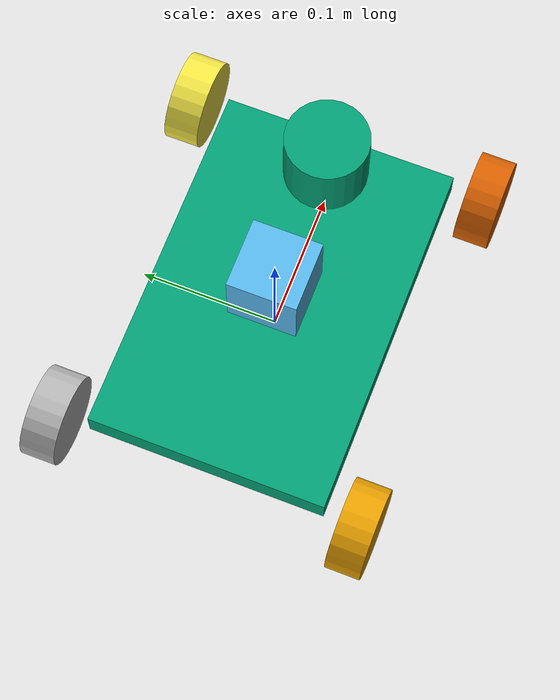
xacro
<?xml version="1.0"?>

<robot xmlns:xacro="http://www.ros.org/wiki/xacro" name="smartcar">

  <!-- ==================== Properties ==================== -->
  <!-- Dimensions -->
  <xacro:property name="wheel_diameter" value="0.064" />
  <xacro:property name="wheel_width" value="0.025" />
  <xacro:property name="wheelbase_length" value="0.257" />
  <xacro:property name="wheelbase_width" value="0.17" />
  <xacro:property name="Lidar_radius" value="0.03" />

  <!-- Masses and inertial properties -->
  <xacro:property name="wheel_mass" value="0.5" />
  <xacro:property name="chassis_mass" value="3.0" />
  <xacro:property name="chassis_height" value="${wheel_diameter/4}" />
  <xacro:property name="steer_link_mass" value="0.1" />
  <xacro:property name="steer_link_size" value="0.01" />
  <xacro:property name="imu_mass" value="0.05" />
  <xacro:property name="imu_size" value="0.05" />
  <xacro:property name="lidar_mass" value="0.05" />
  <xacro:property name="lidar_height" value="0.05" />

  <!-- ==================== Wheel Macros ==================== -->
  <!-- Front wheel with steering -->
  <xacro:macro name="front_wheel" params="prefix parent x y z">
    <link name="front_${prefix}_wheel_link">
      <inertial>
        <mass value="${wheel_mass}"/>
        <inertia
          ixx="${(wheel_mass/12) * (3*(wheel_diameter/2)*(wheel_diameter/2) + wheel_width*wheel_width)}"
          ixy="0.0"
          ixz="0.0"
          iyy="${(wheel_mass/12) * (3*(wheel_diameter/2)*(wheel_diameter/2) + wheel_width*wheel_width)}"
          iyz="0.0"
          izz="${(wheel_mass/2) * (wheel_diameter/2)*(wheel_diameter/2)}"/>
        <origin xyz="0 0 0" rpy="${pi/2} 0 0"/>
      </inertial>
      <visual>
        <origin xyz="0 0 0" rpy="${pi/2} 0 0"/>
        <geometry>
          <cylinder radius="${wheel_diameter/2}" length="${wheel_width}"/>
        </geometry>
      </visual>
      <collision>
        <origin xyz="0 0 0" rpy="${pi/2} 0 0"/>
        <geometry>
          <cylinder radius="${wheel_diameter/2}" length="${wheel_width}"/>
        </geometry>
      </collision>
    </link>

    <link name="front_${prefix}_wheel_steer_link">
      <visual>
          <geometry>
              <box size="0.01 0.01 0.01"/>
          </geometry>
          <origin xyz="0 0 0" rpy="0 0 0"/>
      </visual>

      <collision>
          <geometry>
              <box size="0.01 0.01 0.01"/>
          </geometry>
          <origin xyz="0 0 0" rpy="0 0 0"/>
      </collision>

      <inertial>
          <mass value="${steer_link_mass}"/>
          <origin xyz="0 0 0" rpy="0 0 0"/>
          <inertia
            ixx="${(steer_link_mass/6) * (steer_link_size*steer_link_size)}"
            ixy="0.0"
            ixz="0.0"
            iyy="${(steer_link_mass/6) * (steer_link_size*steer_link_size)}"
            iyz="0.0"
            izz="${(steer_link_mass/6) * (steer_link_size*steer_link_size)}"/>
      </inertial>
  </link>

    <joint name="front_${prefix}_wheel_steer_joint" type="revolute">
      <origin xyz="${x} ${y} ${z}" rpy="0 0 0"/>
      <parent link="${parent}"/>
      <child link="front_${prefix}_wheel_steer_link"/>
      <axis xyz="0 0 1"/>
      <limit lower="-${45 * (pi / 180)}" upper="${45 * (pi / 180)}" effort="10" velocity="1"/>
  </joint>

  <joint name="front_${prefix}_wheel_joint" type="continuous">
    <origin xyz="0 0 0" rpy="0 0 0" />
    <parent link="front_${prefix}_wheel_steer_link"/>
    <child link="front_${prefix}_wheel_link"/>
    <axis xyz="0 1 0"/>
</joint>

  </xacro:macro>

  <!-- Back wheel -->
  <xacro:macro name="back_wheel" params="prefix parent x y z">
    <link name="back_${prefix}_wheel_link">
      <inertial>
        <mass value="0.5"/>
        <inertia ixx="0.0001" ixy="0.0" ixz="0.0" iyy="0.0001" iyz="0.0" izz="0.0002"/>
        <origin xyz="0 0 0" rpy="${pi/2} 0 0"/>
      </inertial>
      <visual>
        <origin xyz="0 0 0" rpy="${pi/2} 0 0"/>
        <geometry>
          <cylinder radius="${wheel_diameter/2}" length="${wheel_width}"/>
        </geometry>
      </visual>
      <collision>
        <origin xyz="0 0 0" rpy="${pi/2} 0 0"/>
        <geometry>
          <cylinder radius="${wheel_diameter/2}" length="${wheel_width}"/>
        </geometry>
      </collision>
    </link>
    <joint name="back_${prefix}_wheel_joint" type="continuous">
      <parent link="${parent}" />
      <child link="back_${prefix}_wheel_link"/>
      <origin xyz="${x} ${y} ${z}" rpy="0 0 0"/>
      <axis xyz="0 1 0"/>
    </joint>
  </xacro:macro>

  <!-- ==================== Robot Base ==================== -->
  <!-- Base footprint and chassis -->
  <link name="base_link">
  </link>

  <link name="base_footprint">
    <inertial>
      <mass value="1"/>
      <inertia ixx="0.01" ixy="0.0" ixz="0.0" iyy="0.01" iyz="0.0" izz="0.02"/>
      <origin xyz="0 0 0"/>
    </inertial>
  </link>

  <joint name="base_footprint_joint" type="fixed">
    <parent link="base_link" />
    <child link="base_footprint"/>
  </joint>

  <link name="chassis_link">
    <inertial>
      <mass value="${chassis_mass}"/>
      <inertia
        ixx="${(chassis_mass/12) * (wheelbase_width*wheelbase_width + chassis_height*chassis_height)}"
        ixy="0.0"
        ixz="0.0"
        iyy="${(chassis_mass/12) * (wheelbase_length*wheelbase_length + chassis_height*chassis_height)}"
        iyz="0.0"
        izz="${(chassis_mass/12) * (wheelbase_length*wheelbase_length + wheelbase_width*wheelbase_width)}"/>
      <origin xyz="0 0 0"/>
    </inertial>
    <visual>
      <geometry>
        <box size="${wheelbase_length} ${wheelbase_width} ${wheel_diameter/3}"/>
      </geometry>
    </visual>
  </link>

  <joint name="chassis_joint" type="fixed">
    <parent link="base_link" />
    <child link="chassis_link"/>
    <origin xyz="0 0 ${wheel_diameter / 2 + (wheel_diameter/8)}"/>
  </joint>

  <!-- ==================== Wheel Instances ==================== -->
  <xacro:front_wheel prefix="left" parent="base_link" x="${wheelbase_length / 2}" y="${wheelbase_width / 2 + wheel_width}" z="${wheel_diameter / 2}"/>
  <xacro:front_wheel prefix="right" parent="base_link" x="${wheelbase_length / 2}" y="-${wheelbase_width / 2 + wheel_width}" z="${wheel_diameter / 2}"/>
  <xacro:back_wheel prefix="left" parent="base_link" x="-${wheelbase_length / 2}" y="${wheelbase_width / 2 + wheel_width}" z="${wheel_diameter / 2}"/>
  <xacro:back_wheel prefix="right" parent="base_link" x="-${wheelbase_length / 2}" y="-${wheelbase_width / 2 + wheel_width}" z="${wheel_diameter / 2}"/>

  <!-- ==================== Sensors ==================== -->
  <!-- IMU Sensor -->
  <link name="imu_link">
    <visual>
      <geometry>
        <box size="0.05 0.05 0.05"/>
      </geometry>
    </visual>

    <collision>
      <origin xyz="0 0 0" rpy="0 0 0"/>
      <geometry>
          <box size="0.1 0.1 0.1"/>
      </geometry>
    </collision>

    <inertial>
      <mass value="${imu_mass}"/>
      <inertia
        ixx="${(imu_mass/6) * (imu_size*imu_size)}"
        ixy="0.0"
        ixz="0.0"
        iyy="${(imu_mass/6) * (imu_size*imu_size)}"
        iyz="0.0"
        izz="${(imu_mass/6) * (imu_size*imu_size)}"/>
      <origin xyz="0 0 0"/>
    </inertial>
  </link>

  <joint name="imu_joint" type="fixed">
    <parent link="base_link" />
    <child link="imu_link"/>
    <origin xyz="0 0 ${wheel_diameter / 2 + 0.05}"/>
  </joint>

  <gazebo reference="imu_link">
    <sensor type="imu" name="imu_sensor">
      <always_on>true</always_on>
      <update_rate>30.0</update_rate>
      <plugin name="gazebo_ros_imu" filename="libgazebo_ros_imu_sensor.so">
        <ros>
          <remapping>~/out:=/imu_data</remapping>
        </ros>
      </plugin>
    </sensor>
  </gazebo>

  <!-- Lidar Sensor -->

  <link name="sllidar_base_link">
    <visual>
      <geometry>
        <cylinder radius="${Lidar_radius}" length="0.05"/>
      </geometry>
    </visual>

    <collision>
      <origin xyz="0 0 0" rpy="0 0 0"/>
      <geometry>
        <cylinder radius="${Lidar_radius}" length="0.05"/>
      </geometry>
    </collision>

    <inertial>
      <mass value="${lidar_mass}"/>
      <inertia
        ixx="${(lidar_mass/12) * (3*Lidar_radius*Lidar_radius + lidar_height*lidar_height)}"
        ixy="0.0"
        ixz="0.0"
        iyy="${(lidar_mass/12) * (3*Lidar_radius*Lidar_radius + lidar_height*lidar_height)}"
        iyz="0.0"
        izz="${(lidar_mass/2) * (Lidar_radius*Lidar_radius)}"/>
      <origin xyz="0 0 0"/>
    </inertial>
  </link>

  <joint name="lidar_joint" type="fixed">
    <parent link="base_link" />
    <child link="sllidar_base_link"/>
    <origin xyz="${wheelbase_length / 2 - Lidar_radius} 0 ${wheel_diameter / 2 + 0.05}"/>
  </joint>

  <gazebo reference="sllidar_base_link">
    <sensor name="lidar" type="ray">
      <pose> 0 0 0 0 0 0 </pose>
      <visualize>true</visualize>
      <update_rate>10</update_rate>
      <ray>
          <scan>
              <horizontal>
                  <samples>360</samples>
                  <min_angle>-${pi}</min_angle>
                  <max_angle>${pi}</max_angle>
              </horizontal>
          </scan>
          <range>
              <min>0.3</min>
              <max>12</max>
          </range>
      </ray>
      <plugin name="lidar_plugin" filename="libgazebo_ros_ray_sensor.so">
          <ros>
              <argument>~/out:=scan</argument>
          </ros>
          <output_type>sensor_msgs/LaserScan</output_type>
          <frame_name>sllidar_base_link</frame_name>
      </plugin>
  </sensor>

  </gazebo>

  <!-- ==================== Gazebo Plugins ==================== -->
  <gazebo>
    <plugin name="car_gazebo_plugin" filename="libcar_gazebo_plugin.so"></plugin>
  </gazebo>

</robot>
